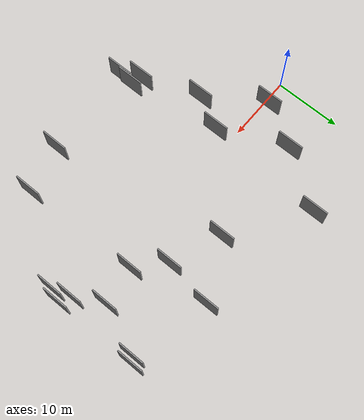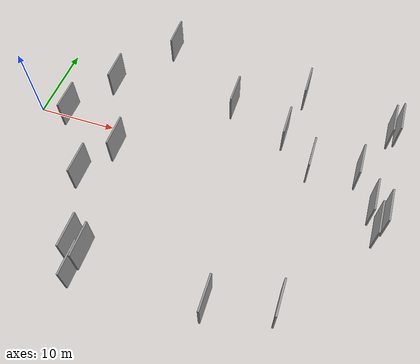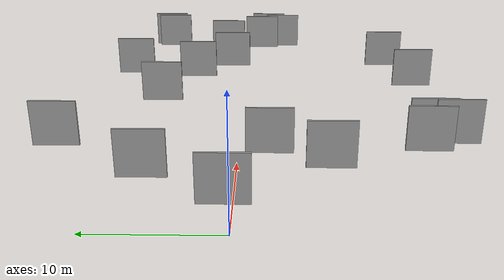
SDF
<sdf version="1.6">
 <world name="default">
  <scene>
   <sky><clouds><speed>12</speed></clouds></sky>
   <ambient>0.4 0.4 0.4 1</ambient>
   <background>0.7 0.7 0.7 1</background>
   <shadows>1</shadows>
  </scene>
  <gravity>0 0 -9.8066</gravity>
  <magnetic_field>6e-06 2.3e-05 -4.2e-05</magnetic_field>
  <physics default="0" name="default_physics" type="ode">
   <ode>
    <solver>
     <type>quick</type>
     <iters>10</iters>
     <sor>1.0</sor>
     <use_dynamic_moi_rescaling>0</use_dynamic_moi_rescaling>
    </solver>
    <constraints>
     <cfm>0</cfm>
     <erp>0.2</erp>
     <contact_max_correcting_vel>100</contact_max_correcting_vel>
     <contact_surface_layer>0.001</contact_surface_layer>
    </constraints>
   </ode>
   <max_step_size>0.004</max_step_size>
   <real_time_factor>1</real_time_factor>
   <real_time_update_rate>250</real_time_update_rate>
  </physics>
  <light name="sun" type="directional">
   <pose>0 0 10 0 0 0</pose>
   <diffuse>0.8 0.8 0.8 1</diffuse>
   <specular>0.2 0.2 0.2 1</specular>
   <attenuation>
    <range>1000</range>
    <constant>0.9</constant>
    <linear>0.01</linear>
    <quadratic>0.001</quadratic>
   </attenuation>
   <direction>-0.5 0.1 -0.9</direction>
  </light>
  <model name="grey_wall_1">
   <static>1</static>
   <pose>31.3913 5.2946 0.0 0.000000 0.000000 1.570796</pose>
   <link name="link">
    <pose>0 0 2.00 0 0 0</pose>
    <collision name="collision"><geometry><box><size>4.00 0.2 4.00</size></box></geometry></collision>
    <visual name="visual">
     <cast_shadows>0</cast_shadows>
     <geometry><box><size>4.00 0.2 4.00</size></box></geometry>
     <material>
      <script>
       <uri>model://grey_wall/materials/scripts</uri>
       <uri>model://grey_wall/materials/textures</uri>
       <name>vrc/grey_wall</name>
      </script>
     </material>
    </visual>
   </link>
  </model>
  <model name="grey_wall_2">
   <static>1</static>
   <pose>12.0507 -2.6021 0.0 0.000000 0.000000 1.570796</pose>
   <link name="link">
    <pose>0 0 2.00 0 0 0</pose>
    <collision name="collision"><geometry><box><size>4.00 0.2 4.00</size></box></geometry></collision>
    <visual name="visual">
     <cast_shadows>0</cast_shadows>
     <geometry><box><size>4.00 0.2 4.00</size></box></geometry>
     <material>
      <script>
       <uri>model://grey_wall/materials/scripts</uri>
       <uri>model://grey_wall/materials/textures</uri>
       <name>vrc/grey_wall</name>
      </script>
     </material>
    </visual>
   </link>
  </model>
  <model name="grey_wall_3">
   <static>1</static>
   <pose>43.1237 -1.7087 0.0 0.000000 0.000000 1.570796</pose>
   <link name="link">
    <pose>0 0 2.00 0 0 0</pose>
    <collision name="collision"><geometry><box><size>4.00 0.2 4.00</size></box></geometry></collision>
    <visual name="visual">
     <cast_shadows>0</cast_shadows>
     <geometry><box><size>4.00 0.2 4.00</size></box></geometry>
     <material>
      <script>
       <uri>model://grey_wall/materials/scripts</uri>
       <uri>model://grey_wall/materials/textures</uri>
       <name>vrc/grey_wall</name>
      </script>
     </material>
    </visual>
   </link>
  </model>
  <model name="grey_wall_4">
   <static>1</static>
   <pose>7.7312 7.1957 0.0 0.000000 0.000000 1.570796</pose>
   <link name="link">
    <pose>0 0 2.00 0 0 0</pose>
    <collision name="collision"><geometry><box><size>4.00 0.2 4.00</size></box></geometry></collision>
    <visual name="visual">
     <cast_shadows>0</cast_shadows>
     <geometry><box><size>4.00 0.2 4.00</size></box></geometry>
     <material>
      <script>
       <uri>model://grey_wall/materials/scripts</uri>
       <uri>model://grey_wall/materials/textures</uri>
       <name>vrc/grey_wall</name>
      </script>
     </material>
    </visual>
   </link>
  </model>
  <model name="grey_wall_5">
   <static>1</static>
   <pose>44.7845 -2.5849 0.0 0.000000 0.000000 1.570796</pose>
   <link name="link">
    <pose>0 0 2.00 0 0 0</pose>
    <collision name="collision"><geometry><box><size>4.00 0.2 4.00</size></box></geometry></collision>
    <visual name="visual">
     <cast_shadows>0</cast_shadows>
     <geometry><box><size>4.00 0.2 4.00</size></box></geometry>
     <material>
      <script>
       <uri>model://grey_wall/materials/scripts</uri>
       <uri>model://grey_wall/materials/textures</uri>
       <name>vrc/grey_wall</name>
      </script>
     </material>
    </visual>
   </link>
  </model>
  <model name="grey_wall_6">
   <static>1</static>
   <pose>13.2322 15.4968 0.0 0.000000 0.000000 1.570796</pose>
   <link name="link">
    <pose>0 0 2.00 0 0 0</pose>
    <collision name="collision"><geometry><box><size>4.00 0.2 4.00</size></box></geometry></collision>
    <visual name="visual">
     <cast_shadows>0</cast_shadows>
     <geometry><box><size>4.00 0.2 4.00</size></box></geometry>
     <material>
      <script>
       <uri>model://grey_wall/materials/scripts</uri>
       <uri>model://grey_wall/materials/textures</uri>
       <name>vrc/grey_wall</name>
      </script>
     </material>
    </visual>
   </link>
  </model>
  <model name="grey_wall_7">
   <static>1</static>
   <pose>43.9692 -4.3338 0.0 0.000000 0.000000 1.570796</pose>
   <link name="link">
    <pose>0 0 2.00 0 0 0</pose>
    <collision name="collision"><geometry><box><size>4.00 0.2 4.00</size></box></geometry></collision>
    <visual name="visual">
     <cast_shadows>0</cast_shadows>
     <geometry><box><size>4.00 0.2 4.00</size></box></geometry>
     <material>
      <script>
       <uri>model://grey_wall/materials/scripts</uri>
       <uri>model://grey_wall/materials/textures</uri>
       <name>vrc/grey_wall</name>
      </script>
     </material>
    </visual>
   </link>
  </model>
  <model name="grey_wall_8">
   <static>1</static>
   <pose>35.8231 -15.9979 0.0 0.000000 0.000000 1.570796</pose>
   <link name="link">
    <pose>0 0 2.00 0 0 0</pose>
    <collision name="collision"><geometry><box><size>4.00 0.2 4.00</size></box></geometry></collision>
    <visual name="visual">
     <cast_shadows>0</cast_shadows>
     <geometry><box><size>4.00 0.2 4.00</size></box></geometry>
     <material>
      <script>
       <uri>model://grey_wall/materials/scripts</uri>
       <uri>model://grey_wall/materials/textures</uri>
       <name>vrc/grey_wall</name>
      </script>
     </material>
    </visual>
   </link>
  </model>
  <model name="grey_wall_9">
   <static>1</static>
   <pose>12.6261 -15.9009 0.0 0.000000 0.000000 1.570796</pose>
   <link name="link">
    <pose>0 0 2.00 0 0 0</pose>
    <collision name="collision"><geometry><box><size>4.00 0.2 4.00</size></box></geometry></collision>
    <visual name="visual">
     <cast_shadows>0</cast_shadows>
     <geometry><box><size>4.00 0.2 4.00</size></box></geometry>
     <material>
      <script>
       <uri>model://grey_wall/materials/scripts</uri>
       <uri>model://grey_wall/materials/textures</uri>
       <name>vrc/grey_wall</name>
      </script>
     </material>
    </visual>
   </link>
  </model>
  <model name="grey_wall_10">
   <static>1</static>
   <pose>3.9211 0.6771 0.0 0.000000 0.000000 1.570796</pose>
   <link name="link">
    <pose>0 0 2.00 0 0 0</pose>
    <collision name="collision"><geometry><box><size>4.00 0.2 4.00</size></box></geometry></collision>
    <visual name="visual">
     <cast_shadows>0</cast_shadows>
     <geometry><box><size>4.00 0.2 4.00</size></box></geometry>
     <material>
      <script>
       <uri>model://grey_wall/materials/scripts</uri>
       <uri>model://grey_wall/materials/textures</uri>
       <name>vrc/grey_wall</name>
      </script>
     </material>
    </visual>
   </link>
  </model>
  <model name="grey_wall_11">
   <static>1</static>
   <pose>14.1235 -18.6439 0.0 0.000000 0.000000 1.570796</pose>
   <link name="link">
    <pose>0 0 2.00 0 0 0</pose>
    <collision name="collision"><geometry><box><size>4.00 0.2 4.00</size></box></geometry></collision>
    <visual name="visual">
     <cast_shadows>0</cast_shadows>
     <geometry><box><size>4.00 0.2 4.00</size></box></geometry>
     <material>
      <script>
       <uri>model://grey_wall/materials/scripts</uri>
       <uri>model://grey_wall/materials/textures</uri>
       <name>vrc/grey_wall</name>
      </script>
     </material>
    </visual>
   </link>
  </model>
  <model name="grey_wall_12">
   <static>1</static>
   <pose>35.2363 1.6685 0.0 0.000000 0.000000 1.570796</pose>
   <link name="link">
    <pose>0 0 2.00 0 0 0</pose>
    <collision name="collision"><geometry><box><size>4.00 0.2 4.00</size></box></geometry></collision>
    <visual name="visual">
     <cast_shadows>0</cast_shadows>
     <geometry><box><size>4.00 0.2 4.00</size></box></geometry>
     <material>
      <script>
       <uri>model://grey_wall/materials/scripts</uri>
       <uri>model://grey_wall/materials/textures</uri>
       <name>vrc/grey_wall</name>
      </script>
     </material>
    </visual>
   </link>
  </model>
  <model name="grey_wall_13">
   <static>1</static>
   <pose>40.9238 2.4556 0.0 0.000000 0.000000 1.570796</pose>
   <link name="link">
    <pose>0 0 2.00 0 0 0</pose>
    <collision name="collision"><geometry><box><size>4.00 0.2 4.00</size></box></geometry></collision>
    <visual name="visual">
     <cast_shadows>0</cast_shadows>
     <geometry><box><size>4.00 0.2 4.00</size></box></geometry>
     <material>
      <script>
       <uri>model://grey_wall/materials/scripts</uri>
       <uri>model://grey_wall/materials/textures</uri>
       <name>vrc/grey_wall</name>
      </script>
     </material>
    </visual>
   </link>
  </model>
  <model name="grey_wall_14">
   <static>1</static>
   <pose>44.6537 10.0990 0.0 0.000000 0.000000 1.570796</pose>
   <link name="link">
    <pose>0 0 2.00 0 0 0</pose>
    <collision name="collision"><geometry><box><size>4.00 0.2 4.00</size></box></geometry></collision>
    <visual name="visual">
     <cast_shadows>0</cast_shadows>
     <geometry><box><size>4.00 0.2 4.00</size></box></geometry>
     <material>
      <script>
       <uri>model://grey_wall/materials/scripts</uri>
       <uri>model://grey_wall/materials/textures</uri>
       <name>vrc/grey_wall</name>
      </script>
     </material>
    </visual>
   </link>
  </model>
  <model name="grey_wall_15">
   <static>1</static>
   <pose>43.8192 9.5526 0.0 0.000000 0.000000 1.570796</pose>
   <link name="link">
    <pose>0 0 2.00 0 0 0</pose>
    <collision name="collision"><geometry><box><size>4.00 0.2 4.00</size></box></geometry></collision>
    <visual name="visual">
     <cast_shadows>0</cast_shadows>
     <geometry><box><size>4.00 0.2 4.00</size></box></geometry>
     <material>
      <script>
       <uri>model://grey_wall/materials/scripts</uri>
       <uri>model://grey_wall/materials/textures</uri>
       <name>vrc/grey_wall</name>
      </script>
     </material>
    </visual>
   </link>
  </model>
  <model name="grey_wall_16">
   <static>1</static>
   <pose>14.3316 -16.5006 0.0 0.000000 0.000000 1.570796</pose>
   <link name="link">
    <pose>0 0 2.00 0 0 0</pose>
    <collision name="collision"><geometry><box><size>4.00 0.2 4.00</size></box></geometry></collision>
    <visual name="visual">
     <cast_shadows>0</cast_shadows>
     <geometry><box><size>4.00 0.2 4.00</size></box></geometry>
     <material>
      <script>
       <uri>model://grey_wall/materials/scripts</uri>
       <uri>model://grey_wall/materials/textures</uri>
       <name>vrc/grey_wall</name>
      </script>
     </material>
    </visual>
   </link>
  </model>
  <model name="grey_wall_17">
   <static>1</static>
   <pose>32.4930 12.4186 0.0 0.000000 0.000000 1.570796</pose>
   <link name="link">
    <pose>0 0 2.00 0 0 0</pose>
    <collision name="collision"><geometry><box><size>4.00 0.2 4.00</size></box></geometry></collision>
    <visual name="visual">
     <cast_shadows>0</cast_shadows>
     <geometry><box><size>4.00 0.2 4.00</size></box></geometry>
     <material>
      <script>
       <uri>model://grey_wall/materials/scripts</uri>
       <uri>model://grey_wall/materials/textures</uri>
       <name>vrc/grey_wall</name>
      </script>
     </material>
    </visual>
   </link>
  </model>
  <model name="grey_wall_18">
   <static>1</static>
   <pose>9.4847 -7.4475 0.0 0.000000 0.000000 1.570796</pose>
   <link name="link">
    <pose>0 0 2.00 0 0 0</pose>
    <collision name="collision"><geometry><box><size>4.00 0.2 4.00</size></box></geometry></collision>
    <visual name="visual">
     <cast_shadows>0</cast_shadows>
     <geometry><box><size>4.00 0.2 4.00</size></box></geometry>
     <material>
      <script>
       <uri>model://grey_wall/materials/scripts</uri>
       <uri>model://grey_wall/materials/textures</uri>
       <name>vrc/grey_wall</name>
      </script>
     </material>
    </visual>
   </link>
  </model>
  <model name="grey_wall_19">
   <static>1</static>
   <pose>23.9422 8.1452 0.0 0.000000 0.000000 1.570796</pose>
   <link name="link">
    <pose>0 0 2.00 0 0 0</pose>
    <collision name="collision"><geometry><box><size>4.00 0.2 4.00</size></box></geometry></collision>
    <visual name="visual">
     <cast_shadows>0</cast_shadows>
     <geometry><box><size>4.00 0.2 4.00</size></box></geometry>
     <material>
      <script>
       <uri>model://grey_wall/materials/scripts</uri>
       <uri>model://grey_wall/materials/textures</uri>
       <name>vrc/grey_wall</name>
      </script>
     </material>
    </visual>
   </link>
  </model>
  <model name="grey_wall_20">
   <static>1</static>
   <pose>28.6317 -17.8260 0.0 0.000000 0.000000 1.570796</pose>
   <link name="link">
    <pose>0 0 2.00 0 0 0</pose>
    <collision name="collision"><geometry><box><size>4.00 0.2 4.00</size></box></geometry></collision>
    <visual name="visual">
     <cast_shadows>0</cast_shadows>
     <geometry><box><size>4.00 0.2 4.00</size></box></geometry>
     <material>
      <script>
       <uri>model://grey_wall/materials/scripts</uri>
       <uri>model://grey_wall/materials/textures</uri>
       <name>vrc/grey_wall</name>
      </script>
     </material>
    </visual>
   </link>
  </model>
 </world>
</sdf>
